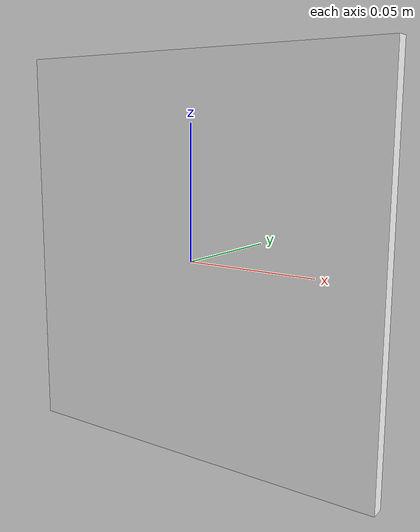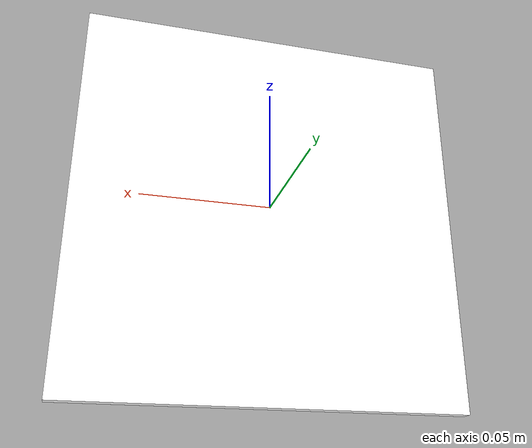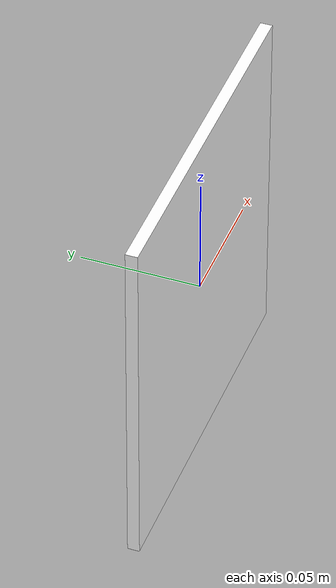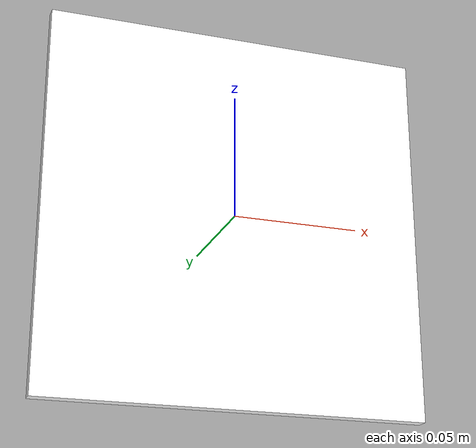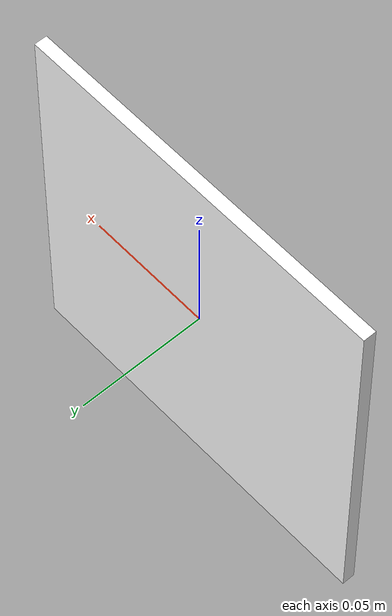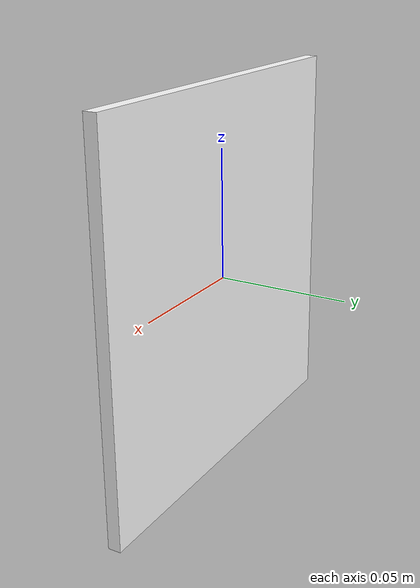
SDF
<?xml version="1.0"?>
<sdf version="1.6">
  <model name="aruco_marker_0">
    <static>true</static>
    <link name="link">
      <visual name="visual">
        <geometry>
          <box>
            <size>0.15 0.005 0.15</size>
          </box>
        </geometry>
        <material>
          <script>
            <uri>model://aruco_marker_0/materials/scripts</uri>
            <uri>model://aruco_marker_0/materials/textures</uri>
            <name>Aruco/Marker0</name>
          </script>
          <ambient>1 1 1 1</ambient>
          <diffuse>1 1 1 1</diffuse>
          <specular>0 0 0 1</specular>
        </material>
      </visual>
    </link>
  </model>
</sdf>
